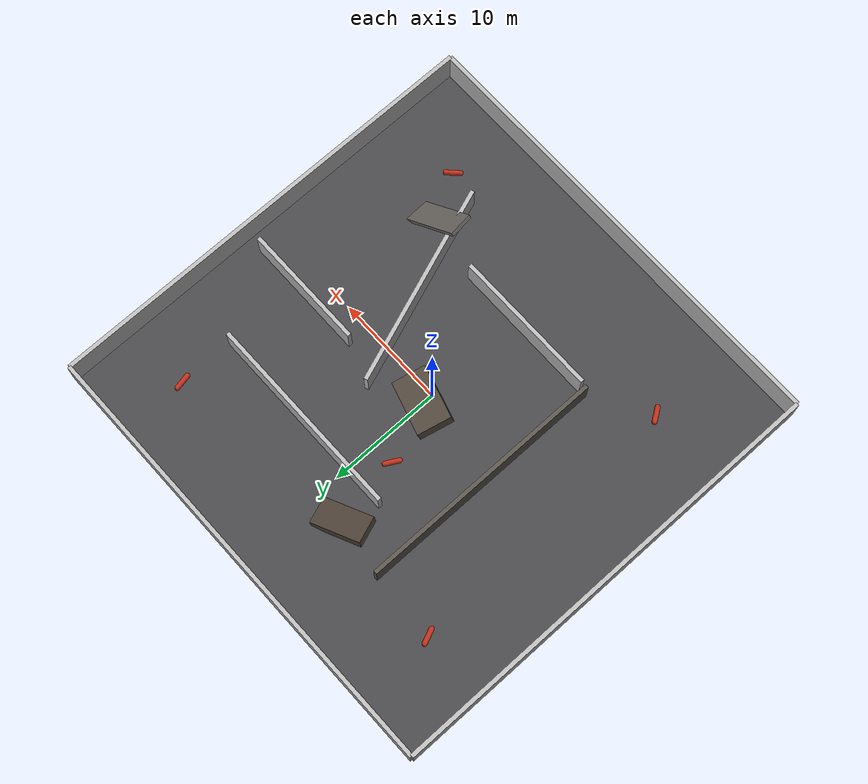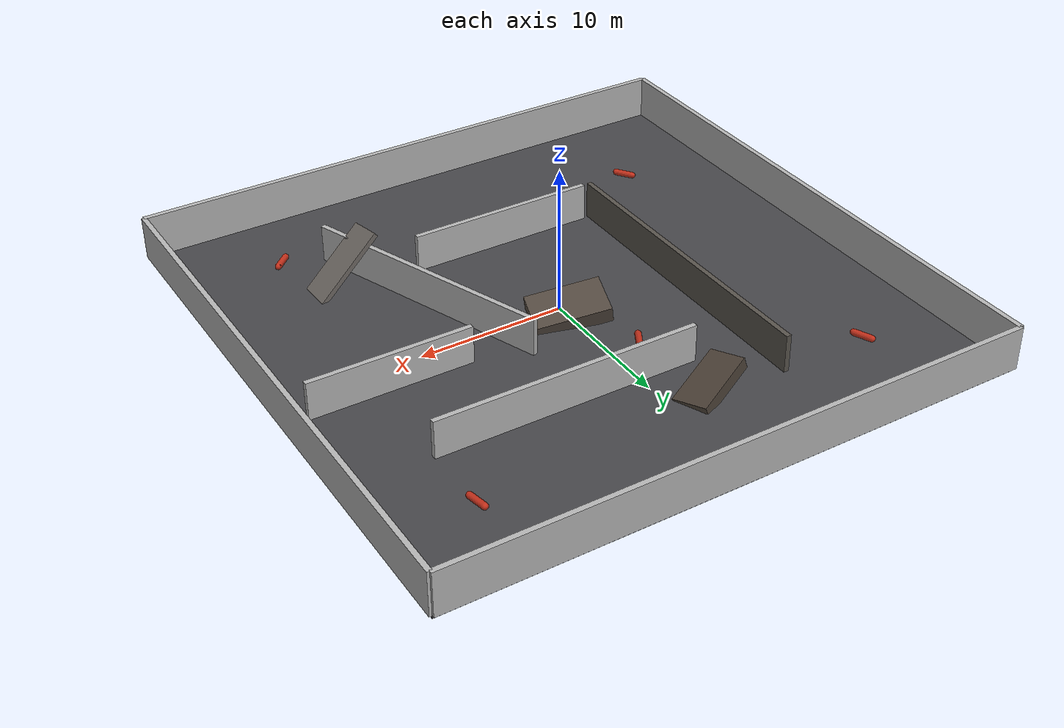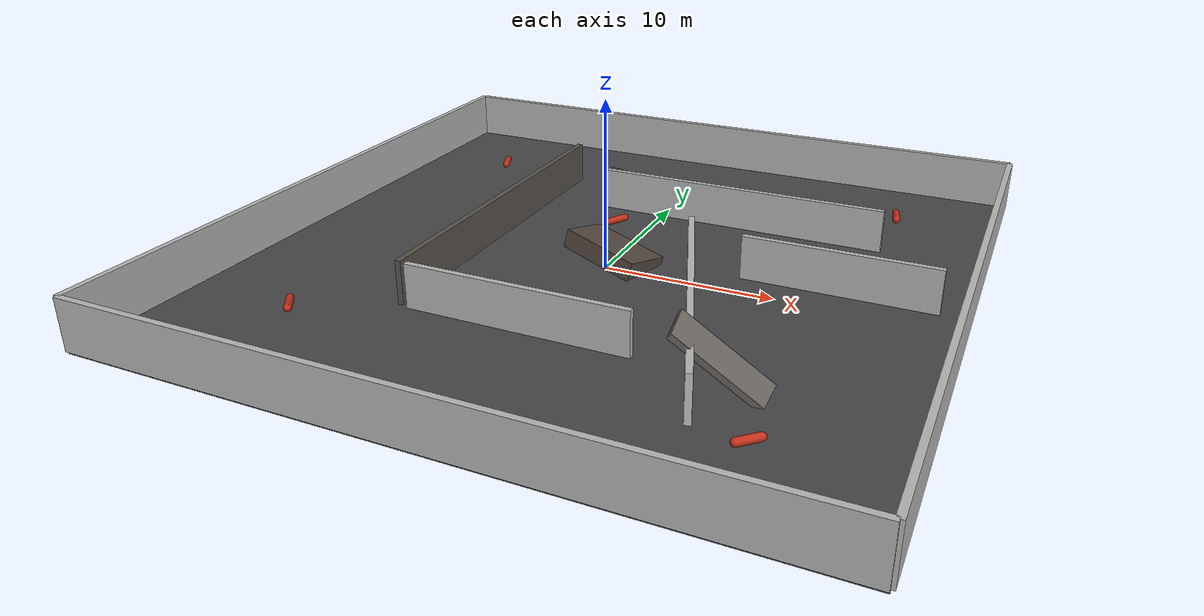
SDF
<?xml version="1.0"?>
<sdf version="1.9">
  <world name="disaster_site">
    <physics name="vm_stable" type="ignored"><max_step_size>0.004</max_step_size><real_time_factor>1.0</real_time_factor></physics>
    <plugin filename="gz-sim-physics-system" name="gz::sim::systems::Physics"/>
    <plugin filename="gz-sim-imu-system" name="gz::sim::systems::Imu"/>
    <plugin filename="gz-sim-user-commands-system" name="gz::sim::systems::UserCommands"/>
    <plugin filename="gz-sim-scene-broadcaster-system" name="gz::sim::systems::SceneBroadcaster"/>
    <plugin filename="gz-sim-sensors-system" name="gz::sim::systems::Sensors"><render_engine>ogre2</render_engine></plugin>
    <scene><ambient>0.10 0.10 0.12 1</ambient><background>0.015 0.018 0.025 1</background><shadows>true</shadows></scene>
    <light name="sun" type="directional"><pose>0 0 18 0 0 0</pose><diffuse>0.75 0.70 0.62 1</diffuse><specular>0.25 0.25 0.25 1</specular><direction>-0.5 0.2 -0.84</direction><cast_shadows>true</cast_shadows></light>

    <model name="floor"><static>true</static><pose>0 0 -0.1 0 0 0</pose><link name="link"><collision name="collision"><geometry><box><size>40 40 0.2</size></box></geometry><surface><friction><ode><mu>1.0</mu><mu2>1.0</mu2></ode></friction></surface></collision><visual name="visual"><geometry><box><size>40 40 0.2</size></box></geometry><material><ambient>0.22 0.22 0.23 1</ambient><diffuse>0.28 0.28 0.29 1</diffuse></material></visual></link></model>

    <!-- Boundary walls and a deliberately broken interior floor plan. -->
    <model name="boundary"><static>true</static><link name="walls">
      <collision name="north_c"><pose>0 20 1.5 0 0 0</pose><geometry><box><size>40 0.35 3</size></box></geometry></collision><visual name="north_v"><pose>0 20 1.5 0 0 0</pose><geometry><box><size>40 0.35 3</size></box></geometry></visual>
      <collision name="south_c"><pose>0 -20 1.5 0 0 0</pose><geometry><box><size>40 0.35 3</size></box></geometry></collision><visual name="south_v"><pose>0 -20 1.5 0 0 0</pose><geometry><box><size>40 0.35 3</size></box></geometry></visual>
      <collision name="east_c"><pose>20 0 1.5 0 0 0</pose><geometry><box><size>0.35 40 3</size></box></geometry></collision><visual name="east_v"><pose>20 0 1.5 0 0 0</pose><geometry><box><size>0.35 40 3</size></box></geometry></visual>
      <collision name="west_c"><pose>-20 0 1.5 0 0 0</pose><geometry><box><size>0.35 40 3</size></box></geometry></collision><visual name="west_v"><pose>-20 0 1.5 0 0 0</pose><geometry><box><size>0.35 40 3</size></box></geometry></visual>
    </link></model>

    <model name="damaged_walls"><static>true</static><link name="link">
      <collision name="a_c"><pose>-8 2 1.3 0 0 0</pose><geometry><box><size>0.35 22 2.6</size></box></geometry></collision><visual name="a_v"><pose>-8 2 1.3 0 0 0</pose><geometry><box><size>0.35 22 2.6</size></box></geometry><material><diffuse>0.35 0.33 0.30 1</diffuse></material></visual>
      <collision name="b_c"><pose>5 9 1.3 0 0 0</pose><geometry><box><size>18 0.35 2.6</size></box></geometry></collision><visual name="b_v"><pose>5 9 1.3 0 0 0</pose><geometry><box><size>18 0.35 2.6</size></box></geometry></visual>
      <collision name="c_c"><pose>7 -5 1.3 0 0 0.35</pose><geometry><box><size>0.35 18 2.6</size></box></geometry></collision><visual name="c_v"><pose>7 -5 1.3 0 0 0.35</pose><geometry><box><size>0.35 18 2.6</size></box></geometry></visual>
      <collision name="d_c"><pose>-1 -9 1.3 0 0 0</pose><geometry><box><size>13 0.35 2.6</size></box></geometry></collision><visual name="d_v"><pose>-1 -9 1.3 0 0 0</pose><geometry><box><size>13 0.35 2.6</size></box></geometry></visual>
      <collision name="e_c"><pose>13 2 1.3 0 0 0</pose><geometry><box><size>11 0.35 2.6</size></box></geometry></collision><visual name="e_v"><pose>13 2 1.3 0 0 0</pose><geometry><box><size>11 0.35 2.6</size></box></geometry></visual>
    </link></model>

    <!-- Rubble uses primitive collision geometry so physics stays stable in VMs. -->
    <model name="rubble_north"><static>true</static><pose>-3 12 0.45 0.15 0.25 0.4</pose><link name="link"><collision name="c"><geometry><box><size>4.5 2.4 0.8</size></box></geometry></collision><visual name="v"><geometry><box><size>4.5 2.4 0.8</size></box></geometry><material><diffuse>0.29 0.25 0.21 1</diffuse></material></visual></link></model>
    <model name="rubble_center"><static>true</static><pose>0 1 0.6 -0.2 0.15 -0.3</pose><link name="link"><collision name="c"><geometry><box><size>5 3 1.1</size></box></geometry></collision><visual name="v"><geometry><box><size>5 3 1.1</size></box></geometry><material><diffuse>0.33 0.29 0.25 1</diffuse></material></visual></link></model>
    <model name="slab"><static>true</static><pose>11 -10 1.1 0.1 0.65 0.2</pose><link name="link"><collision name="c"><geometry><box><size>7 2.2 0.35</size></box></geometry></collision><visual name="v"><geometry><box><size>7 2.2 0.35</size></box></geometry><material><diffuse>0.42 0.40 0.38 1</diffuse></material></visual></link></model>

    <light name="warning_west" type="point"><pose>-10 -4 2.0 0 0 0</pose><diffuse>1 0.28 0.02 1</diffuse><attenuation><range>7</range><constant>0.4</constant><linear>0.08</linear><quadratic>0.02</quadratic></attenuation></light>
    <light name="warning_east" type="point"><pose>10 6 2.0 0 0 0</pose><diffuse>1 0.28 0.02 1</diffuse><attenuation><range>7</range><constant>0.4</constant><linear>0.08</linear><quadratic>0.02</quadratic></attenuation></light>

    <!-- Survivor poses are mirrored in survivor_oracle launch parameters. -->
    <model name="survivor_0"><static>true</static><pose>-14 13 0.45 1.57 0 0.4</pose><link name="body"><visual name="v"><geometry><capsule><radius>0.22</radius><length>1.25</length></capsule></geometry><material><diffuse>0.75 0.18 0.10 1</diffuse><emissive>0.18 0.03 0.01 1</emissive></material></visual></link></model>
    <model name="survivor_1"><static>true</static><pose>-2 6 0.45 1.57 0 -0.5</pose><link name="body"><visual name="v"><geometry><capsule><radius>0.22</radius><length>1.25</length></capsule></geometry><material><diffuse>0.75 0.18 0.10 1</diffuse></material></visual></link></model>
    <model name="survivor_2"><static>true</static><pose>14 14 0.45 1.57 0 0.2</pose><link name="body"><visual name="v"><geometry><capsule><radius>0.22</radius><length>1.25</length></capsule></geometry><material><diffuse>0.75 0.18 0.10 1</diffuse></material></visual></link></model>
    <model name="survivor_3"><static>true</static><pose>13 -14 0.45 1.57 0 -0.8</pose><link name="body"><visual name="v"><geometry><capsule><radius>0.22</radius><length>1.25</length></capsule></geometry><material><diffuse>0.75 0.18 0.10 1</diffuse></material></visual></link></model>
    <model name="survivor_4"><static>true</static><pose>-13 -12 0.45 1.57 0 0.6</pose><link name="body"><visual name="v"><geometry><capsule><radius>0.22</radius><length>1.25</length></capsule></geometry><material><diffuse>0.75 0.18 0.10 1</diffuse></material></visual></link></model>
  </world>
</sdf>
